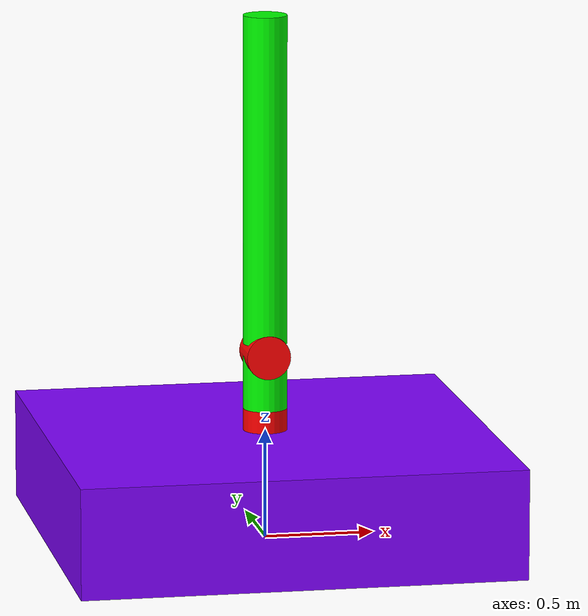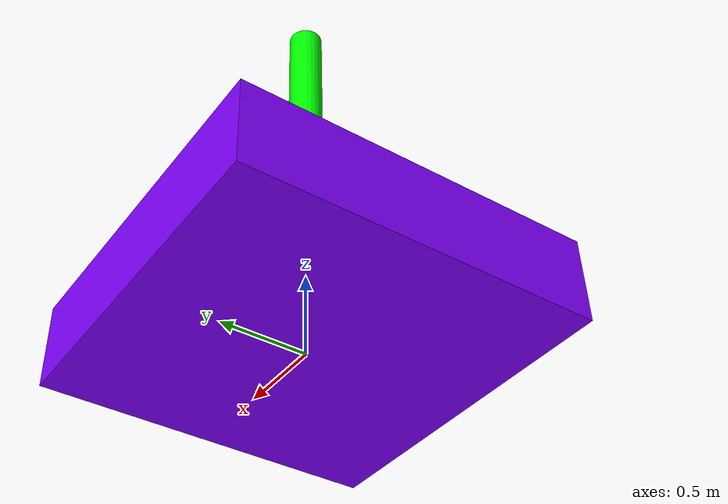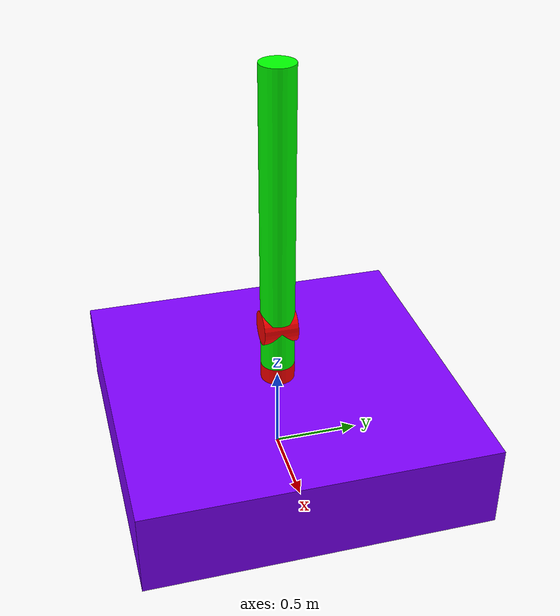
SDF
<?xml version="1.0" ?>
<sdf version="1.8">

    <model name='arm' canonical_link='base'>
        <link name='base'>
            <pose relative_to='__model__'>
                0.0 0.0 0.25 0.0 0.0 0.0 <!-- x y z row pitch yaw-->
            </pose>
            <inertial>
                <mass>
                    1.14395 <!-- kg -->
                </mass>
                <inertia>
                    <ixx>0.095329</ixx>
                    <ixy>0</ixy>
                    <ixz>0</ixz>
                    <iyy>0.381317</iyy>
                    <iyz>0</iyz>
                    <izz>0.476646</izz>
                </inertia>
            </inertial>
            <visual name='base_visual'>
                <geometry>
                    <box>
                        <size> 2.0 2.0 0.5 </size>
                    </box>
                </geometry>
                <material>
                    <ambient>0.0 1.0 0.0 1</ambient>
                    <diffuse>0.5 0.0 1.0 1</diffuse>
                    <specular>1.0 0.0 0.5 1</specular>
                </material>
            </visual>
            <collision name='base_collision'>
                <geometry>
                    <box>
                        <size>2.0 2.0 0.5</size>
                    </box>
                </geometry>
            </collision>
        </link>

        <link name='joint1'>
            <pose relative_to='base'>
                0.0 0.0 0.30 0.0 0.0 0.0
            </pose>
            <inertial>
                <mass>
                    1.14395 <!-- kg -->
                </mass>
                <inertia>
                    <ixx>0.095329</ixx>
                    <ixy>0</ixy>
                    <ixz>0</ixz>
                    <iyy>0.381317</iyy>
                    <iyz>0</iyz>
                    <izz>0.476646</izz>
                </inertia>
            </inertial>
            <visual name='joint1_visual'>
                <geometry>
                    <cylinder>
                        <radius>0.1</radius>
                        <length>0.1</length>
                    </cylinder>
                </geometry>
                <material>
                    <ambient>0.5 0.0 0.0 1</ambient>
                    <diffuse>1.0 0.0 0.0 1</diffuse>
                    <specular>0.3 0.3 0.3 1</specular>
                </material>
            </visual>
            <collision name='joint1_collision'>
                <geometry>
                    <cylinder>
                        <radius>0.1</radius>
                        <length>0.1</length>
                    </cylinder>
                </geometry>
            </collision>
        </link>

        <link name='link1'>
            <pose relative_to='joint1'>
                0.0 0.0 0.175 0.0 0.0 0.0
            </pose>
            <inertial>
                <mass>
                    1.14395 <!-- kg -->
                </mass>
                <inertia>
                    <ixx>0.095329</ixx>
                    <ixy>0</ixy>
                    <ixz>0</ixz>
                    <iyy>0.381317</iyy>
                    <iyz>0</iyz>
                    <izz>0.476646</izz>
                </inertia>
            </inertial>
            <visual name='link1_visual'>
                <geometry>
                    <cylinder>
                        <radius>0.1</radius>
                        <length>0.25</length>
                    </cylinder>
                </geometry>
                <material>
                    <ambient>0.0 0.5 0.0 1</ambient>
                    <diffuse>0.0 1.0 0.0 1</diffuse>
                    <specular>0.1 0.1 0.1 1</specular>
                </material>
            </visual>
            <collision name='link1_collision'>
                <geometry>
                    <cylinder>
                        <radius>0.1</radius>
                        <length>0.25</length>
                    </cylinder>
                </geometry>
            </collision>
        </link>

        <link name='joint2'>
            <pose relative_to='link1'>
                0.0 0.0 0.125 1.5708 0.0 0.0
            </pose>
            <inertial>
                <mass>
                    1.14395 <!-- kg -->
                </mass>
                <inertia>
                    <ixx>0.095329</ixx>
                    <ixy>0</ixy>
                    <ixz>0</ixz>
                    <iyy>0.381317</iyy>
                    <iyz>0</iyz>
                    <izz>0.476646</izz>
                </inertia>
            </inertial>
            <visual name='joint2_visual'>
                <geometry>
                    <cylinder>
                        <radius>0.1</radius>
                        <length>0.2</length>
                    </cylinder>
                </geometry>
                <material>
                    <ambient>0.5 0.0 0.0 1</ambient>
                    <diffuse>1.0 0.0 0.0 1</diffuse>
                    <specular>0.3 0.3 0.3 1</specular>
                </material>
            </visual>
            <collision name='joint2_collision'>
                <geometry>
                    <cylinder>
                        <radius>0.1</radius>
                        <length>0.2</length>
                    </cylinder>
                </geometry>
            </collision>
        </link>

        <link name='link2'>
            <pose relative_to='joint2'>
                0.0 0.8 0.0 1.5708 0.0 0.0
            </pose>
            <inertial>
                <mass>
                    1.14395 <!-- kg -->
                </mass>
                <inertia>
                    <ixx>0.095329</ixx>
                    <ixy>0</ixy>
                    <ixz>0</ixz>
                    <iyy>0.381317</iyy>
                    <iyz>0</iyz>
                    <izz>0.476646</izz>
                </inertia>
            </inertial>
            <visual name='link2_visual'>
                <geometry>
                    <cylinder>
                        <radius>0.1</radius>
                        <length>1.5</length>
                    </cylinder>
                </geometry>
                <material>
                    <ambient>0.0 0.5 0.0 1</ambient>
                    <diffuse>0.0 1.0 0.0 1</diffuse>
                    <specular>0.1 0.1 0.1 1</specular>
                </material>
            </visual>
            <collision name='link2_collision'>
                <geometry>
                    <cylinder>
                        <radius>0.1</radius>
                        <length>1.5</length>
                    </cylinder>
                </geometry>
            </collision>
        </link>

        <joint name='joint1_base' type='revolute'>
            <pose relative_to='base'>0 0 0.25 0 0 0</pose>
            <parent>base</parent>
            <child>joint1</child>
            <axis>
                <xyz expressed_in='base'>0.0 0.0 1</xyz>
                <limit>
                    <lower>-1.79769</lower>
                    <upper>1.79769</upper>
                    <effort>inf</effort>
                    <velocity>inf</velocity>
                </limit>
            </axis>
        </joint>

        <joint name='joint1_link1' type='fixed'>
            <pose relative_to='joint1'>0 0 0.0 0 0 0</pose>
            <parent>joint1</parent>
            <child>link1</child>
        </joint>

        <joint name='link1_joint2' type='revolute'>
            <pose relative_to='link1'>0 0 0.125 0 0 0</pose>
            <parent>link1</parent>
            <child>joint2</child>
            <axis>
                <xyz expressed_in='link1'>0 1 0</xyz>
                <limit>
                    <lower>-1.5</lower>
                    <upper>1.5</upper>
                    <effort>inf</effort>
                    <velocity>inf</velocity>
                </limit>
            </axis>
            <dynamics>
                <damping>0.01</damping>
            </dynamics>
        </joint>

        <joint name='joint2_link2' type='fixed'>
            <pose relative_to='joint2'>0 0 0 1.5708 0 0</pose>
            <parent>joint2</parent>
            <child>link2</child>
        </joint>

        <plugin filename="libignition-gazebo6-joint-position-controller-system.so" name='ignition::gazebo::systems::JointPositionController'>
            <joint_name>joint1_base</joint_name>
            <topic>link1_joint2</topic>
            <p_gain>1</p_gain>
            <i_gain>0.1</i_gain>
            <d_gain>0.01</d_gain>
            <cmd_max>100</cmd_max>
            <cmd_min>-100</cmd_min>
        </plugin>

    </model>

</sdf>
